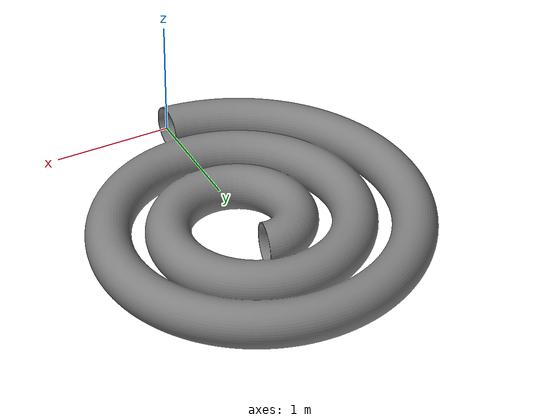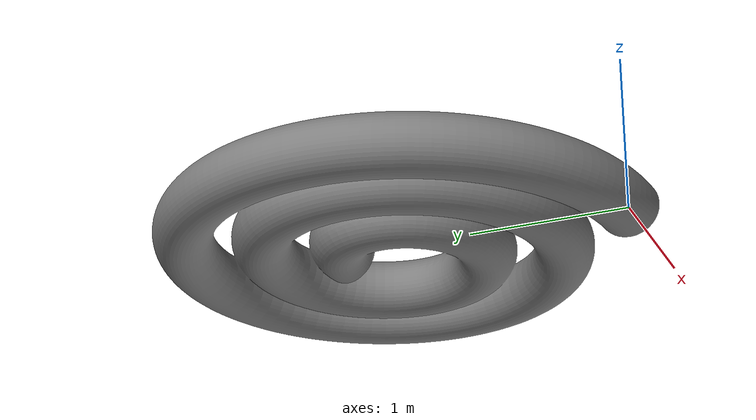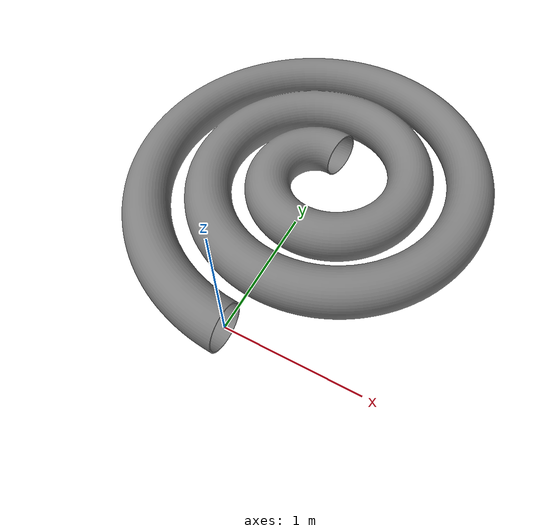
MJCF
<mujoco model="spiral_vert">
  <default>
    <default class="visual">
      <geom group="2" type="mesh" contype="0" conaffinity="0"/>
    </default>
    <default class="collision">
      <geom group="3" type="mesh"/>
    </default>
  </default>
  <asset>
    <mesh file="spiral_vert.obj"/>
    <mesh file="spiral_vert_collision_0.obj"/>
    <mesh file="spiral_vert_collision_1.obj"/>
    <mesh file="spiral_vert_collision_2.obj"/>
    <mesh file="spiral_vert_collision_3.obj"/>
    <mesh file="spiral_vert_collision_4.obj"/>
    <mesh file="spiral_vert_collision_5.obj"/>
    <mesh file="spiral_vert_collision_6.obj"/>
    <mesh file="spiral_vert_collision_7.obj"/>
    <mesh file="spiral_vert_collision_8.obj"/>
    <mesh file="spiral_vert_collision_9.obj"/>
    <mesh file="spiral_vert_collision_10.obj"/>
    <mesh file="spiral_vert_collision_11.obj"/>
    <mesh file="spiral_vert_collision_12.obj"/>
    <mesh file="spiral_vert_collision_13.obj"/>
    <mesh file="spiral_vert_collision_14.obj"/>
    <mesh file="spiral_vert_collision_15.obj"/>
    <mesh file="spiral_vert_collision_16.obj"/>
    <mesh file="spiral_vert_collision_17.obj"/>
    <mesh file="spiral_vert_collision_18.obj"/>
    <mesh file="spiral_vert_collision_19.obj"/>
    <mesh file="spiral_vert_collision_20.obj"/>
    <mesh file="spiral_vert_collision_21.obj"/>
    <mesh file="spiral_vert_collision_22.obj"/>
    <mesh file="spiral_vert_collision_23.obj"/>
    <mesh file="spiral_vert_collision_24.obj"/>
    <mesh file="spiral_vert_collision_25.obj"/>
    <mesh file="spiral_vert_collision_26.obj"/>
    <mesh file="spiral_vert_collision_27.obj"/>
    <mesh file="spiral_vert_collision_28.obj"/>
    <mesh file="spiral_vert_collision_29.obj"/>
    <mesh file="spiral_vert_collision_30.obj"/>
    <mesh file="spiral_vert_collision_31.obj"/>
    <mesh file="spiral_vert_collision_32.obj"/>
    <mesh file="spiral_vert_collision_33.obj"/>
    <mesh file="spiral_vert_collision_34.obj"/>
    <mesh file="spiral_vert_collision_35.obj"/>
    <mesh file="spiral_vert_collision_36.obj"/>
    <mesh file="spiral_vert_collision_37.obj"/>
    <mesh file="spiral_vert_collision_38.obj"/>
    <mesh file="spiral_vert_collision_39.obj"/>
    <mesh file="spiral_vert_collision_40.obj"/>
    <mesh file="spiral_vert_collision_41.obj"/>
    <mesh file="spiral_vert_collision_42.obj"/>
    <mesh file="spiral_vert_collision_43.obj"/>
    <mesh file="spiral_vert_collision_44.obj"/>
    <mesh file="spiral_vert_collision_45.obj"/>
    <mesh file="spiral_vert_collision_46.obj"/>
    <mesh file="spiral_vert_collision_47.obj"/>
    <mesh file="spiral_vert_collision_48.obj"/>
    <mesh file="spiral_vert_collision_49.obj"/>
    <mesh file="spiral_vert_collision_50.obj"/>
    <mesh file="spiral_vert_collision_51.obj"/>
    <mesh file="spiral_vert_collision_52.obj"/>
    <mesh file="spiral_vert_collision_53.obj"/>
    <mesh file="spiral_vert_collision_54.obj"/>
    <mesh file="spiral_vert_collision_55.obj"/>
    <mesh file="spiral_vert_collision_56.obj"/>
    <mesh file="spiral_vert_collision_57.obj"/>
    <mesh file="spiral_vert_collision_58.obj"/>
    <mesh file="spiral_vert_collision_59.obj"/>
    <mesh file="spiral_vert_collision_60.obj"/>
    <mesh file="spiral_vert_collision_61.obj"/>
    <mesh file="spiral_vert_collision_62.obj"/>
    <mesh file="spiral_vert_collision_63.obj"/>
    <mesh file="spiral_vert_collision_64.obj"/>
    <mesh file="spiral_vert_collision_65.obj"/>
    <mesh file="spiral_vert_collision_66.obj"/>
    <mesh file="spiral_vert_collision_67.obj"/>
    <mesh file="spiral_vert_collision_68.obj"/>
    <mesh file="spiral_vert_collision_69.obj"/>
    <mesh file="spiral_vert_collision_70.obj"/>
    <mesh file="spiral_vert_collision_71.obj"/>
    <mesh file="spiral_vert_collision_72.obj"/>
    <mesh file="spiral_vert_collision_73.obj"/>
    <mesh file="spiral_vert_collision_74.obj"/>
    <mesh file="spiral_vert_collision_75.obj"/>
    <mesh file="spiral_vert_collision_76.obj"/>
    <mesh file="spiral_vert_collision_77.obj"/>
    <mesh file="spiral_vert_collision_78.obj"/>
    <mesh file="spiral_vert_collision_79.obj"/>
    <mesh file="spiral_vert_collision_80.obj"/>
    <mesh file="spiral_vert_collision_81.obj"/>
    <mesh file="spiral_vert_collision_82.obj"/>
    <mesh file="spiral_vert_collision_83.obj"/>
    <mesh file="spiral_vert_collision_84.obj"/>
    <mesh file="spiral_vert_collision_85.obj"/>
    <mesh file="spiral_vert_collision_86.obj"/>
    <mesh file="spiral_vert_collision_87.obj"/>
    <mesh file="spiral_vert_collision_88.obj"/>
    <mesh file="spiral_vert_collision_89.obj"/>
    <mesh file="spiral_vert_collision_90.obj"/>
    <mesh file="spiral_vert_collision_91.obj"/>
    <mesh file="spiral_vert_collision_92.obj"/>
    <mesh file="spiral_vert_collision_93.obj"/>
    <mesh file="spiral_vert_collision_94.obj"/>
    <mesh file="spiral_vert_collision_95.obj"/>
    <mesh file="spiral_vert_collision_96.obj"/>
    <mesh file="spiral_vert_collision_97.obj"/>
    <mesh file="spiral_vert_collision_98.obj"/>
    <mesh file="spiral_vert_collision_99.obj"/>
    <mesh file="spiral_vert_collision_100.obj"/>
    <mesh file="spiral_vert_collision_101.obj"/>
    <mesh file="spiral_vert_collision_102.obj"/>
    <mesh file="spiral_vert_collision_103.obj"/>
    <mesh file="spiral_vert_collision_104.obj"/>
    <mesh file="spiral_vert_collision_105.obj"/>
    <mesh file="spiral_vert_collision_106.obj"/>
    <mesh file="spiral_vert_collision_107.obj"/>
    <mesh file="spiral_vert_collision_108.obj"/>
    <mesh file="spiral_vert_collision_109.obj"/>
    <mesh file="spiral_vert_collision_110.obj"/>
    <mesh file="spiral_vert_collision_111.obj"/>
    <mesh file="spiral_vert_collision_112.obj"/>
    <mesh file="spiral_vert_collision_113.obj"/>
    <mesh file="spiral_vert_collision_114.obj"/>
    <mesh file="spiral_vert_collision_115.obj"/>
    <mesh file="spiral_vert_collision_116.obj"/>
    <mesh file="spiral_vert_collision_117.obj"/>
    <mesh file="spiral_vert_collision_118.obj"/>
    <mesh file="spiral_vert_collision_119.obj"/>
    <mesh file="spiral_vert_collision_120.obj"/>
    <mesh file="spiral_vert_collision_121.obj"/>
    <mesh file="spiral_vert_collision_122.obj"/>
    <mesh file="spiral_vert_collision_123.obj"/>
    <mesh file="spiral_vert_collision_124.obj"/>
    <mesh file="spiral_vert_collision_125.obj"/>
    <mesh file="spiral_vert_collision_126.obj"/>
    <mesh file="spiral_vert_collision_127.obj"/>
    <mesh file="spiral_vert_collision_128.obj"/>
    <mesh file="spiral_vert_collision_129.obj"/>
    <mesh file="spiral_vert_collision_130.obj"/>
    <mesh file="spiral_vert_collision_131.obj"/>
    <mesh file="spiral_vert_collision_132.obj"/>
    <mesh file="spiral_vert_collision_133.obj"/>
    <mesh file="spiral_vert_collision_134.obj"/>
    <mesh file="spiral_vert_collision_135.obj"/>
    <mesh file="spiral_vert_collision_136.obj"/>
    <mesh file="spiral_vert_collision_137.obj"/>
    <mesh file="spiral_vert_collision_138.obj"/>
    <mesh file="spiral_vert_collision_139.obj"/>
    <mesh file="spiral_vert_collision_140.obj"/>
    <mesh file="spiral_vert_collision_141.obj"/>
    <mesh file="spiral_vert_collision_142.obj"/>
    <mesh file="spiral_vert_collision_143.obj"/>
    <mesh file="spiral_vert_collision_144.obj"/>
    <mesh file="spiral_vert_collision_145.obj"/>
    <mesh file="spiral_vert_collision_146.obj"/>
    <mesh file="spiral_vert_collision_147.obj"/>
    <mesh file="spiral_vert_collision_148.obj"/>
    <mesh file="spiral_vert_collision_149.obj"/>
    <mesh file="spiral_vert_collision_150.obj"/>
    <mesh file="spiral_vert_collision_151.obj"/>
    <mesh file="spiral_vert_collision_152.obj"/>
    <mesh file="spiral_vert_collision_153.obj"/>
    <mesh file="spiral_vert_collision_154.obj"/>
    <mesh file="spiral_vert_collision_155.obj"/>
    <mesh file="spiral_vert_collision_156.obj"/>
    <mesh file="spiral_vert_collision_157.obj"/>
    <mesh file="spiral_vert_collision_158.obj"/>
    <mesh file="spiral_vert_collision_159.obj"/>
    <mesh file="spiral_vert_collision_160.obj"/>
    <mesh file="spiral_vert_collision_161.obj"/>
    <mesh file="spiral_vert_collision_162.obj"/>
    <mesh file="spiral_vert_collision_163.obj"/>
    <mesh file="spiral_vert_collision_164.obj"/>
    <mesh file="spiral_vert_collision_165.obj"/>
    <mesh file="spiral_vert_collision_166.obj"/>
    <mesh file="spiral_vert_collision_167.obj"/>
    <mesh file="spiral_vert_collision_168.obj"/>
    <mesh file="spiral_vert_collision_169.obj"/>
    <mesh file="spiral_vert_collision_170.obj"/>
    <mesh file="spiral_vert_collision_171.obj"/>
    <mesh file="spiral_vert_collision_172.obj"/>
    <mesh file="spiral_vert_collision_173.obj"/>
    <mesh file="spiral_vert_collision_174.obj"/>
    <mesh file="spiral_vert_collision_175.obj"/>
    <mesh file="spiral_vert_collision_176.obj"/>
    <mesh file="spiral_vert_collision_177.obj"/>
    <mesh file="spiral_vert_collision_178.obj"/>
    <mesh file="spiral_vert_collision_179.obj"/>
    <mesh file="spiral_vert_collision_180.obj"/>
    <mesh file="spiral_vert_collision_181.obj"/>
    <mesh file="spiral_vert_collision_182.obj"/>
    <mesh file="spiral_vert_collision_183.obj"/>
    <mesh file="spiral_vert_collision_184.obj"/>
    <mesh file="spiral_vert_collision_185.obj"/>
    <mesh file="spiral_vert_collision_186.obj"/>
    <mesh file="spiral_vert_collision_187.obj"/>
    <mesh file="spiral_vert_collision_188.obj"/>
    <mesh file="spiral_vert_collision_189.obj"/>
    <mesh file="spiral_vert_collision_190.obj"/>
    <mesh file="spiral_vert_collision_191.obj"/>
    <mesh file="spiral_vert_collision_192.obj"/>
    <mesh file="spiral_vert_collision_193.obj"/>
    <mesh file="spiral_vert_collision_194.obj"/>
    <mesh file="spiral_vert_collision_195.obj"/>
    <mesh file="spiral_vert_collision_196.obj"/>
    <mesh file="spiral_vert_collision_197.obj"/>
    <mesh file="spiral_vert_collision_198.obj"/>
    <mesh file="spiral_vert_collision_199.obj"/>
    <mesh file="spiral_vert_collision_200.obj"/>
    <mesh file="spiral_vert_collision_201.obj"/>
    <mesh file="spiral_vert_collision_202.obj"/>
    <mesh file="spiral_vert_collision_203.obj"/>
    <mesh file="spiral_vert_collision_204.obj"/>
    <mesh file="spiral_vert_collision_205.obj"/>
    <mesh file="spiral_vert_collision_206.obj"/>
    <mesh file="spiral_vert_collision_207.obj"/>
    <mesh file="spiral_vert_collision_208.obj"/>
    <mesh file="spiral_vert_collision_209.obj"/>
    <mesh file="spiral_vert_collision_210.obj"/>
    <mesh file="spiral_vert_collision_211.obj"/>
    <mesh file="spiral_vert_collision_212.obj"/>
    <mesh file="spiral_vert_collision_213.obj"/>
    <mesh file="spiral_vert_collision_214.obj"/>
    <mesh file="spiral_vert_collision_215.obj"/>
    <mesh file="spiral_vert_collision_216.obj"/>
    <mesh file="spiral_vert_collision_217.obj"/>
    <mesh file="spiral_vert_collision_218.obj"/>
    <mesh file="spiral_vert_collision_219.obj"/>
    <mesh file="spiral_vert_collision_220.obj"/>
    <mesh file="spiral_vert_collision_221.obj"/>
    <mesh file="spiral_vert_collision_222.obj"/>
    <mesh file="spiral_vert_collision_223.obj"/>
    <mesh file="spiral_vert_collision_224.obj"/>
    <mesh file="spiral_vert_collision_225.obj"/>
    <mesh file="spiral_vert_collision_226.obj"/>
    <mesh file="spiral_vert_collision_227.obj"/>
    <mesh file="spiral_vert_collision_228.obj"/>
    <mesh file="spiral_vert_collision_229.obj"/>
    <mesh file="spiral_vert_collision_230.obj"/>
    <mesh file="spiral_vert_collision_231.obj"/>
    <mesh file="spiral_vert_collision_232.obj"/>
    <mesh file="spiral_vert_collision_233.obj"/>
    <mesh file="spiral_vert_collision_234.obj"/>
    <mesh file="spiral_vert_collision_235.obj"/>
    <mesh file="spiral_vert_collision_236.obj"/>
    <mesh file="spiral_vert_collision_237.obj"/>
    <mesh file="spiral_vert_collision_238.obj"/>
    <mesh file="spiral_vert_collision_239.obj"/>
    <mesh file="spiral_vert_collision_240.obj"/>
    <mesh file="spiral_vert_collision_241.obj"/>
    <mesh file="spiral_vert_collision_242.obj"/>
    <mesh file="spiral_vert_collision_243.obj"/>
    <mesh file="spiral_vert_collision_244.obj"/>
    <mesh file="spiral_vert_collision_245.obj"/>
    <mesh file="spiral_vert_collision_246.obj"/>
    <mesh file="spiral_vert_collision_247.obj"/>
    <mesh file="spiral_vert_collision_248.obj"/>
    <mesh file="spiral_vert_collision_249.obj"/>
    <mesh file="spiral_vert_collision_250.obj"/>
    <mesh file="spiral_vert_collision_251.obj"/>
    <mesh file="spiral_vert_collision_252.obj"/>
    <mesh file="spiral_vert_collision_253.obj"/>
    <mesh file="spiral_vert_collision_254.obj"/>
    <mesh file="spiral_vert_collision_255.obj"/>
    <mesh file="spiral_vert_collision_256.obj"/>
    <mesh file="spiral_vert_collision_257.obj"/>
    <mesh file="spiral_vert_collision_258.obj"/>
    <mesh file="spiral_vert_collision_259.obj"/>
    <mesh file="spiral_vert_collision_260.obj"/>
    <mesh file="spiral_vert_collision_261.obj"/>
    <mesh file="spiral_vert_collision_262.obj"/>
    <mesh file="spiral_vert_collision_263.obj"/>
    <mesh file="spiral_vert_collision_264.obj"/>
    <mesh file="spiral_vert_collision_265.obj"/>
    <mesh file="spiral_vert_collision_266.obj"/>
    <mesh file="spiral_vert_collision_267.obj"/>
    <mesh file="spiral_vert_collision_268.obj"/>
    <mesh file="spiral_vert_collision_269.obj"/>
    <mesh file="spiral_vert_collision_270.obj"/>
    <mesh file="spiral_vert_collision_271.obj"/>
    <mesh file="spiral_vert_collision_272.obj"/>
    <mesh file="spiral_vert_collision_273.obj"/>
    <mesh file="spiral_vert_collision_274.obj"/>
    <mesh file="spiral_vert_collision_275.obj"/>
    <mesh file="spiral_vert_collision_276.obj"/>
    <mesh file="spiral_vert_collision_277.obj"/>
    <mesh file="spiral_vert_collision_278.obj"/>
    <mesh file="spiral_vert_collision_279.obj"/>
    <mesh file="spiral_vert_collision_280.obj"/>
    <mesh file="spiral_vert_collision_281.obj"/>
    <mesh file="spiral_vert_collision_282.obj"/>
    <mesh file="spiral_vert_collision_283.obj"/>
    <mesh file="spiral_vert_collision_284.obj"/>
    <mesh file="spiral_vert_collision_285.obj"/>
    <mesh file="spiral_vert_collision_286.obj"/>
    <mesh file="spiral_vert_collision_287.obj"/>
    <mesh file="spiral_vert_collision_288.obj"/>
    <mesh file="spiral_vert_collision_289.obj"/>
    <mesh file="spiral_vert_collision_290.obj"/>
    <mesh file="spiral_vert_collision_291.obj"/>
    <mesh file="spiral_vert_collision_292.obj"/>
    <mesh file="spiral_vert_collision_293.obj"/>
    <mesh file="spiral_vert_collision_294.obj"/>
    <mesh file="spiral_vert_collision_295.obj"/>
    <mesh file="spiral_vert_collision_296.obj"/>
    <mesh file="spiral_vert_collision_297.obj"/>
    <mesh file="spiral_vert_collision_298.obj"/>
    <mesh file="spiral_vert_collision_299.obj"/>
    <mesh file="spiral_vert_collision_300.obj"/>
    <mesh file="spiral_vert_collision_301.obj"/>
    <mesh file="spiral_vert_collision_302.obj"/>
    <mesh file="spiral_vert_collision_303.obj"/>
    <mesh file="spiral_vert_collision_304.obj"/>
    <mesh file="spiral_vert_collision_305.obj"/>
    <mesh file="spiral_vert_collision_306.obj"/>
    <mesh file="spiral_vert_collision_307.obj"/>
    <mesh file="spiral_vert_collision_308.obj"/>
    <mesh file="spiral_vert_collision_309.obj"/>
    <mesh file="spiral_vert_collision_310.obj"/>
    <mesh file="spiral_vert_collision_311.obj"/>
    <mesh file="spiral_vert_collision_312.obj"/>
    <mesh file="spiral_vert_collision_313.obj"/>
    <mesh file="spiral_vert_collision_314.obj"/>
    <mesh file="spiral_vert_collision_315.obj"/>
    <mesh file="spiral_vert_collision_316.obj"/>
    <mesh file="spiral_vert_collision_317.obj"/>
    <mesh file="spiral_vert_collision_318.obj"/>
    <mesh file="spiral_vert_collision_319.obj"/>
    <mesh file="spiral_vert_collision_320.obj"/>
    <mesh file="spiral_vert_collision_321.obj"/>
    <mesh file="spiral_vert_collision_322.obj"/>
    <mesh file="spiral_vert_collision_323.obj"/>
    <mesh file="spiral_vert_collision_324.obj"/>
    <mesh file="spiral_vert_collision_325.obj"/>
    <mesh file="spiral_vert_collision_326.obj"/>
    <mesh file="spiral_vert_collision_327.obj"/>
    <mesh file="spiral_vert_collision_328.obj"/>
    <mesh file="spiral_vert_collision_329.obj"/>
    <mesh file="spiral_vert_collision_330.obj"/>
    <mesh file="spiral_vert_collision_331.obj"/>
    <mesh file="spiral_vert_collision_332.obj"/>
    <mesh file="spiral_vert_collision_333.obj"/>
    <mesh file="spiral_vert_collision_334.obj"/>
    <mesh file="spiral_vert_collision_335.obj"/>
    <mesh file="spiral_vert_collision_336.obj"/>
    <mesh file="spiral_vert_collision_337.obj"/>
    <mesh file="spiral_vert_collision_338.obj"/>
    <mesh file="spiral_vert_collision_339.obj"/>
  </asset>
  <worldbody>
    <body name="spiral_vert">
      <geom mesh="spiral_vert" class="visual"/>
      <geom mesh="spiral_vert_collision_0" rgba="0.9588255963066795 0.001994478355619944 0.04247229769127803 1" class="collision"/>
      <geom mesh="spiral_vert_collision_1" rgba="0.07979495958342753 0.4140516031495709 0.7052846241166332 1" class="collision"/>
      <geom mesh="spiral_vert_collision_2" rgba="0.08890490846986188 0.3470132013315965 0.31135297774714654 1" class="collision"/>
      <geom mesh="spiral_vert_collision_3" rgba="0.25489372754398687 0.7326088322485268 0.33877135682852366 1" class="collision"/>
      <geom mesh="spiral_vert_collision_4" rgba="0.03185628098258442 0.339822805084523 0.1620935485013113 1" class="collision"/>
      <geom mesh="spiral_vert_collision_5" rgba="0.8155241973210524 0.2267684547820904 0.7614368808594973 1" class="collision"/>
      <geom mesh="spiral_vert_collision_6" rgba="0.6985409518746566 0.9574890836788919 0.07513888648203948 1" class="collision"/>
      <geom mesh="spiral_vert_collision_7" rgba="0.03325926810738411 0.9645589130650707 0.8751974799916002 1" class="collision"/>
      <geom mesh="spiral_vert_collision_8" rgba="0.4817051887325903 0.17743624700794547 0.577646563793075 1" class="collision"/>
      <geom mesh="spiral_vert_collision_9" rgba="0.811179153453729 0.14987358164739417 0.906714960254814 1" class="collision"/>
      <geom mesh="spiral_vert_collision_10" rgba="0.79818292163533 0.28308564361966293 0.15367131807543766 1" class="collision"/>
      <geom mesh="spiral_vert_collision_11" rgba="0.20087713116472272 0.7468484587927782 0.5279575526874097 1" class="collision"/>
      <geom mesh="spiral_vert_collision_12" rgba="0.16084565072379065 0.8529332251271616 0.2914327495574289 1" class="collision"/>
      <geom mesh="spiral_vert_collision_13" rgba="0.3264713902915597 0.55845567257885 0.19149437009265324 1" class="collision"/>
      <geom mesh="spiral_vert_collision_14" rgba="0.9303808270765632 0.4814264868879695 0.45353740972164136 1" class="collision"/>
      <geom mesh="spiral_vert_collision_15" rgba="0.7730377990220563 0.4795708357395292 0.5488147070692889 1" class="collision"/>
      <geom mesh="spiral_vert_collision_16" rgba="0.8536276896420517 0.9901754315934794 0.5568039896387413 1" class="collision"/>
      <geom mesh="spiral_vert_collision_17" rgba="0.23700518480742816 0.3688178273444367 0.5109995700892762 1" class="collision"/>
      <geom mesh="spiral_vert_collision_18" rgba="0.34649018986991154 0.3348237189294111 0.018555606705618732 1" class="collision"/>
      <geom mesh="spiral_vert_collision_19" rgba="0.1723344904806744 0.8031781445470242 0.9312646210914408 1" class="collision"/>
      <geom mesh="spiral_vert_collision_20" rgba="0.566550175599958 0.3347863900888953 0.6635122084328675 1" class="collision"/>
      <geom mesh="spiral_vert_collision_21" rgba="0.468980201793623 0.4157350671729023 0.5023549797639872 1" class="collision"/>
      <geom mesh="spiral_vert_collision_22" rgba="0.9516285369502343 0.876975306573652 0.7309911069493286 1" class="collision"/>
      <geom mesh="spiral_vert_collision_23" rgba="0.5740367736890796 0.27542625035966906 0.02162907144000692 1" class="collision"/>
      <geom mesh="spiral_vert_collision_24" rgba="0.7525002246511551 0.3371719611580045 0.8298792411745944 1" class="collision"/>
      <geom mesh="spiral_vert_collision_25" rgba="0.8510153878253135 0.9870689358381884 0.9306582351696051 1" class="collision"/>
      <geom mesh="spiral_vert_collision_26" rgba="0.412155830974554 0.5361647813082477 0.367596939137795 1" class="collision"/>
      <geom mesh="spiral_vert_collision_27" rgba="0.9821694516507182 0.4537752868450571 0.6283164445013126 1" class="collision"/>
      <geom mesh="spiral_vert_collision_28" rgba="0.22619130193044878 0.48023232223071066 0.9587388507227623 1" class="collision"/>
      <geom mesh="spiral_vert_collision_29" rgba="0.5008066372304264 0.7070434197264701 0.3566695507446944 1" class="collision"/>
      <geom mesh="spiral_vert_collision_30" rgba="0.8260802755659861 0.33085087473405717 0.42896679806878046 1" class="collision"/>
      <geom mesh="spiral_vert_collision_31" rgba="0.8526965120074498 0.22514720197862137 0.1408311624800047 1" class="collision"/>
      <geom mesh="spiral_vert_collision_32" rgba="0.9116858879320301 0.37926641199514055 0.287625849020578 1" class="collision"/>
      <geom mesh="spiral_vert_collision_33" rgba="0.18323787276850623 0.8145291595154157 0.06582676135421095 1" class="collision"/>
      <geom mesh="spiral_vert_collision_34" rgba="0.6133122763466516 0.5039626069654737 0.739493905300201 1" class="collision"/>
      <geom mesh="spiral_vert_collision_35" rgba="0.5800034082605268 0.4366640251563396 0.2175350437902407 1" class="collision"/>
      <geom mesh="spiral_vert_collision_36" rgba="0.31177001034378093 0.9055341449609708 0.9856400785435105 1" class="collision"/>
      <geom mesh="spiral_vert_collision_37" rgba="0.27005509094186575 0.7129875808164843 0.10781839380787761 1" class="collision"/>
      <geom mesh="spiral_vert_collision_38" rgba="0.060300084759433714 0.8277868877231194 0.8562453138744286 1" class="collision"/>
      <geom mesh="spiral_vert_collision_39" rgba="0.276573805498773 0.48659733133990557 0.9829165849133105 1" class="collision"/>
      <geom mesh="spiral_vert_collision_40" rgba="0.07993764955983351 0.6470742866350317 0.6774137510294977 1" class="collision"/>
      <geom mesh="spiral_vert_collision_41" rgba="0.69062843707178 0.6406235501737978 0.20221758498164322 1" class="collision"/>
      <geom mesh="spiral_vert_collision_42" rgba="0.9866007653021557 0.6665654039265325 0.017531371518391126 1" class="collision"/>
      <geom mesh="spiral_vert_collision_43" rgba="0.14895628218065649 0.8977313305725598 0.7607585499138702 1" class="collision"/>
      <geom mesh="spiral_vert_collision_44" rgba="0.41393092600448456 0.3291848437291224 0.9271162482042493 1" class="collision"/>
      <geom mesh="spiral_vert_collision_45" rgba="0.702482539038892 0.6743490744068769 0.726609771889796 1" class="collision"/>
      <geom mesh="spiral_vert_collision_46" rgba="0.742820309998739 0.4106751351808876 0.28094717913685086 1" class="collision"/>
      <geom mesh="spiral_vert_collision_47" rgba="0.5140090665118044 0.2613002980750172 0.36625155066802983 1" class="collision"/>
      <geom mesh="spiral_vert_collision_48" rgba="0.09261845173518135 0.6966174422700266 0.08203742124514601 1" class="collision"/>
      <geom mesh="spiral_vert_collision_49" rgba="0.39540338943635067 0.17971023397527164 0.9787073660392626 1" class="collision"/>
      <geom mesh="spiral_vert_collision_50" rgba="0.2905422320888641 0.9883506131261092 0.7121426715664084 1" class="collision"/>
      <geom mesh="spiral_vert_collision_51" rgba="0.5144071582010973 0.5879939165879245 0.5878051631657653 1" class="collision"/>
      <geom mesh="spiral_vert_collision_52" rgba="0.6163953955431746 0.6831018484898439 0.39373247958279367 1" class="collision"/>
      <geom mesh="spiral_vert_collision_53" rgba="0.29920319833414555 0.604561201726412 0.09860830127010445 1" class="collision"/>
      <geom mesh="spiral_vert_collision_54" rgba="0.2303482035944574 0.7501905102929738 0.8830276750389252 1" class="collision"/>
      <geom mesh="spiral_vert_collision_55" rgba="0.693136820142498 0.0764731779382597 0.3907179195847392 1" class="collision"/>
      <geom mesh="spiral_vert_collision_56" rgba="0.8538499386672462 0.8816363229430249 0.41740274092610363 1" class="collision"/>
      <geom mesh="spiral_vert_collision_57" rgba="0.40955145849813934 0.3899369122598221 0.16895327314722375 1" class="collision"/>
      <geom mesh="spiral_vert_collision_58" rgba="0.823239144963074 0.2574443461884335 0.4278257175097896 1" class="collision"/>
      <geom mesh="spiral_vert_collision_59" rgba="0.29001708236764745 0.3658130388308779 0.25571463533256655 1" class="collision"/>
      <geom mesh="spiral_vert_collision_60" rgba="0.22497868555638945 0.05452857925349497 0.8573525352196878 1" class="collision"/>
      <geom mesh="spiral_vert_collision_61" rgba="0.6802056581508262 0.6466592500975191 0.6041565149580245 1" class="collision"/>
      <geom mesh="spiral_vert_collision_62" rgba="0.03539129830240728 0.36580256992332383 0.4378877829682505 1" class="collision"/>
      <geom mesh="spiral_vert_collision_63" rgba="0.7763448971191949 0.6047036174078797 0.887892790347798 1" class="collision"/>
      <geom mesh="spiral_vert_collision_64" rgba="0.6510008020118426 0.782117318163752 0.3990332520105677 1" class="collision"/>
      <geom mesh="spiral_vert_collision_65" rgba="0.29425562316416776 0.1002299625302071 0.3100657722117818 1" class="collision"/>
      <geom mesh="spiral_vert_collision_66" rgba="0.5891475916698284 0.8603336115634127 0.69898631769491 1" class="collision"/>
      <geom mesh="spiral_vert_collision_67" rgba="0.08505445170653425 0.7832629918568402 0.704063208000642 1" class="collision"/>
      <geom mesh="spiral_vert_collision_68" rgba="0.5408774747599979 0.33117126118465556 0.6123329346748012 1" class="collision"/>
      <geom mesh="spiral_vert_collision_69" rgba="0.4749117084049812 0.6652435095035834 0.9609890791877935 1" class="collision"/>
      <geom mesh="spiral_vert_collision_70" rgba="0.7203918738443325 0.07376020818497442 0.765756938849566 1" class="collision"/>
      <geom mesh="spiral_vert_collision_71" rgba="0.5234538315482123 0.8333064875963047 0.7120949881627814 1" class="collision"/>
      <geom mesh="spiral_vert_collision_72" rgba="0.7116745005844652 0.8960419925636098 0.40779337715627395 1" class="collision"/>
      <geom mesh="spiral_vert_collision_73" rgba="0.29360868298052956 0.10212993208858556 0.14901801374369184 1" class="collision"/>
      <geom mesh="spiral_vert_collision_74" rgba="0.48774872952620885 0.8072579251798173 0.3520655591449394 1" class="collision"/>
      <geom mesh="spiral_vert_collision_75" rgba="0.9347738747476692 0.7177091970538368 0.8682654333194272 1" class="collision"/>
      <geom mesh="spiral_vert_collision_76" rgba="0.9198404242833169 0.8996839435408301 0.3942686869879444 1" class="collision"/>
      <geom mesh="spiral_vert_collision_77" rgba="0.7905434299413829 0.3690271177066001 0.007824820375669228 1" class="collision"/>
      <geom mesh="spiral_vert_collision_78" rgba="0.3363028588022302 0.4598338684283496 0.6871986713519526 1" class="collision"/>
      <geom mesh="spiral_vert_collision_79" rgba="0.28767778717641657 0.8372682384308644 0.8976791737171578 1" class="collision"/>
      <geom mesh="spiral_vert_collision_80" rgba="0.18081810404159082 0.7848151217359859 0.3978864562714751 1" class="collision"/>
      <geom mesh="spiral_vert_collision_81" rgba="0.6695264237323892 0.050994271888915144 0.41402615007820665 1" class="collision"/>
      <geom mesh="spiral_vert_collision_82" rgba="0.6304832542913548 0.3709183876002502 0.07579226566663388 1" class="collision"/>
      <geom mesh="spiral_vert_collision_83" rgba="0.2896990869313738 0.7669204046748336 0.9013229869142717 1" class="collision"/>
      <geom mesh="spiral_vert_collision_84" rgba="0.6870326790624852 0.8219441356642091 0.18111430480970647 1" class="collision"/>
      <geom mesh="spiral_vert_collision_85" rgba="0.8288365233966698 0.7216346375401164 0.14180701294428333 1" class="collision"/>
      <geom mesh="spiral_vert_collision_86" rgba="0.24851119627680418 0.7222895729833699 0.6232285854198302 1" class="collision"/>
      <geom mesh="spiral_vert_collision_87" rgba="0.19603983580530737 0.9778430665159573 0.64010776639419 1" class="collision"/>
      <geom mesh="spiral_vert_collision_88" rgba="0.6143973347753391 0.9119353820236249 0.974759667487581 1" class="collision"/>
      <geom mesh="spiral_vert_collision_89" rgba="0.6541865502842552 0.31352898508050997 0.9141202315488974 1" class="collision"/>
      <geom mesh="spiral_vert_collision_90" rgba="0.1296652887732238 0.48186668152775103 0.39375469644657524 1" class="collision"/>
      <geom mesh="spiral_vert_collision_91" rgba="0.432983429152519 0.05419084991129097 0.011296846419929119 1" class="collision"/>
      <geom mesh="spiral_vert_collision_92" rgba="0.28589975534837353 0.26090102351472233 0.16202131634760286 1" class="collision"/>
      <geom mesh="spiral_vert_collision_93" rgba="0.8031128572865306 0.8919565929713866 0.3431357671523665 1" class="collision"/>
      <geom mesh="spiral_vert_collision_94" rgba="0.9712234816561035 0.698935951017934 0.964882149524237 1" class="collision"/>
      <geom mesh="spiral_vert_collision_95" rgba="0.4902545694630317 0.3711577506319196 0.36070470707029745 1" class="collision"/>
      <geom mesh="spiral_vert_collision_96" rgba="0.02134296824750359 0.4773742425252784 0.3897759214961317 1" class="collision"/>
      <geom mesh="spiral_vert_collision_97" rgba="0.4800465947362391 0.08419303177166171 0.4811096342649831 1" class="collision"/>
      <geom mesh="spiral_vert_collision_98" rgba="0.3458744073156117 0.9260772342195598 0.2797340246450071 1" class="collision"/>
      <geom mesh="spiral_vert_collision_99" rgba="0.8194208462993128 0.33133416149575023 0.3301427614299576 1" class="collision"/>
      <geom mesh="spiral_vert_collision_100" rgba="0.12162154459737395 0.4439438527116214 0.8127153296036042 1" class="collision"/>
      <geom mesh="spiral_vert_collision_101" rgba="0.9655711867408048 0.9242472626318751 0.8163885441774142 1" class="collision"/>
      <geom mesh="spiral_vert_collision_102" rgba="0.033932356031752264 0.4579570286343706 0.307571455211484 1" class="collision"/>
      <geom mesh="spiral_vert_collision_103" rgba="0.25330377173751895 0.13707757939705534 0.7924511834164637 1" class="collision"/>
      <geom mesh="spiral_vert_collision_104" rgba="0.4244743218146221 0.6511433159275269 0.13807525947692445 1" class="collision"/>
      <geom mesh="spiral_vert_collision_105" rgba="0.46967159721542096 0.6976089554477558 0.7793594401822849 1" class="collision"/>
      <geom mesh="spiral_vert_collision_106" rgba="0.9453057379092707 0.8938592715144196 0.861867301763607 1" class="collision"/>
      <geom mesh="spiral_vert_collision_107" rgba="0.06763556689869654 0.5012149580004263 0.04209344820057992 1" class="collision"/>
      <geom mesh="spiral_vert_collision_108" rgba="0.335203641840195 0.9066692954746902 0.16780868389734027 1" class="collision"/>
      <geom mesh="spiral_vert_collision_109" rgba="0.6620191583915203 0.5664869490547413 0.5309168273547922 1" class="collision"/>
      <geom mesh="spiral_vert_collision_110" rgba="0.976217639805869 0.6385496129396886 0.8799014351668992 1" class="collision"/>
      <geom mesh="spiral_vert_collision_111" rgba="0.124266579970302 0.3275109913386166 0.21058521075486447 1" class="collision"/>
      <geom mesh="spiral_vert_collision_112" rgba="0.5951105841900195 0.818028265669817 0.2536152965359558 1" class="collision"/>
      <geom mesh="spiral_vert_collision_113" rgba="0.4005407343177243 0.3964672287098191 0.693202884246446 1" class="collision"/>
      <geom mesh="spiral_vert_collision_114" rgba="0.7133864134760314 0.27431398466548784 0.6281773340680027 1" class="collision"/>
      <geom mesh="spiral_vert_collision_115" rgba="0.7968194639160072 0.7483969608147376 0.961353432577347 1" class="collision"/>
      <geom mesh="spiral_vert_collision_116" rgba="0.6476521167857807 0.6385322625375144 0.6179041576728179 1" class="collision"/>
      <geom mesh="spiral_vert_collision_117" rgba="0.548914079085588 0.21821896107345662 0.7070093786823902 1" class="collision"/>
      <geom mesh="spiral_vert_collision_118" rgba="0.2925550938670308 0.839559144450348 0.27234137549154935 1" class="collision"/>
      <geom mesh="spiral_vert_collision_119" rgba="0.15504588420301024 0.8736801858300846 0.00817676814041457 1" class="collision"/>
      <geom mesh="spiral_vert_collision_120" rgba="0.2266289611515535 0.5675749573945187 0.003775929876650208 1" class="collision"/>
      <geom mesh="spiral_vert_collision_121" rgba="0.5823293658087358 0.5528166777151315 0.4887071598413336 1" class="collision"/>
      <geom mesh="spiral_vert_collision_122" rgba="0.9400392858097261 0.7789127842473346 0.2765308991008608 1" class="collision"/>
      <geom mesh="spiral_vert_collision_123" rgba="0.4592188157684677 0.7837418567718213 0.020944688701453607 1" class="collision"/>
      <geom mesh="spiral_vert_collision_124" rgba="0.03753243354383551 0.4354270749589023 0.48861208231234765 1" class="collision"/>
      <geom mesh="spiral_vert_collision_125" rgba="0.37470381584713597 0.33100035989637944 0.8172627193918482 1" class="collision"/>
      <geom mesh="spiral_vert_collision_126" rgba="0.479334285815989 0.02822946787963465 0.7275600601234542 1" class="collision"/>
      <geom mesh="spiral_vert_collision_127" rgba="0.45282816773722157 0.8679266603399383 0.6908613796805003 1" class="collision"/>
      <geom mesh="spiral_vert_collision_128" rgba="0.20961926650803087 0.5228897386862782 0.7186149191701378 1" class="collision"/>
      <geom mesh="spiral_vert_collision_129" rgba="0.03758370286386481 0.23775307618610897 0.28330676898500706 1" class="collision"/>
      <geom mesh="spiral_vert_collision_130" rgba="0.9341717502071945 0.8193214163007485 0.004256503405368428 1" class="collision"/>
      <geom mesh="spiral_vert_collision_131" rgba="0.002367312180080683 0.1360033759505318 0.11917999222101971 1" class="collision"/>
      <geom mesh="spiral_vert_collision_132" rgba="0.9626978791808029 0.5092348196690074 0.7605837564173632 1" class="collision"/>
      <geom mesh="spiral_vert_collision_133" rgba="0.562629814804958 0.5630433349921695 0.9037385998690451 1" class="collision"/>
      <geom mesh="spiral_vert_collision_134" rgba="0.8443838912027255 0.9688517512027761 0.9515834527199927 1" class="collision"/>
      <geom mesh="spiral_vert_collision_135" rgba="0.8608982865729974 0.810038811097411 0.33011200151411313 1" class="collision"/>
      <geom mesh="spiral_vert_collision_136" rgba="0.5994876212665051 0.6270630535592052 0.5643835233752486 1" class="collision"/>
      <geom mesh="spiral_vert_collision_137" rgba="0.9936302721574058 0.5196266469744625 0.6200066497868659 1" class="collision"/>
      <geom mesh="spiral_vert_collision_138" rgba="0.43438413137939624 0.49595622337812517 0.8059766121767279 1" class="collision"/>
      <geom mesh="spiral_vert_collision_139" rgba="0.8690960749139954 0.6437918590755313 0.9732148325360026 1" class="collision"/>
      <geom mesh="spiral_vert_collision_140" rgba="0.4556545920957149 0.3618035400858126 0.2356996670338063 1" class="collision"/>
      <geom mesh="spiral_vert_collision_141" rgba="0.889698061859589 0.2615555856493861 0.7313972495452855 1" class="collision"/>
      <geom mesh="spiral_vert_collision_142" rgba="0.3870039447290169 0.6551948550100695 0.20066041172256144 1" class="collision"/>
      <geom mesh="spiral_vert_collision_143" rgba="0.9826151483803404 0.9540268559068519 0.026612220171383094 1" class="collision"/>
      <geom mesh="spiral_vert_collision_144" rgba="0.006840780497713972 0.13899016575641487 0.7847064573867499 1" class="collision"/>
      <geom mesh="spiral_vert_collision_145" rgba="0.5796502213646763 0.9123372257806733 0.96452163297337 1" class="collision"/>
      <geom mesh="spiral_vert_collision_146" rgba="0.5375033103735146 0.08210385188759839 0.533430502563219 1" class="collision"/>
      <geom mesh="spiral_vert_collision_147" rgba="0.08051292833543588 0.23910576297525232 0.23514762790374732 1" class="collision"/>
      <geom mesh="spiral_vert_collision_148" rgba="0.35750278271265157 0.41428837714196387 0.2610989999072435 1" class="collision"/>
      <geom mesh="spiral_vert_collision_149" rgba="0.4548727023677184 0.5398728927539453 0.306630768051265 1" class="collision"/>
      <geom mesh="spiral_vert_collision_150" rgba="0.5079977270625218 0.9927842184568855 0.019830870884822827 1" class="collision"/>
      <geom mesh="spiral_vert_collision_151" rgba="0.2600575737448011 0.18757979587096574 0.44763859605203815 1" class="collision"/>
      <geom mesh="spiral_vert_collision_152" rgba="0.033352609639791586 0.9038817951627662 0.7738955979330705 1" class="collision"/>
      <geom mesh="spiral_vert_collision_153" rgba="0.5594494728988424 0.4071567091356153 0.11581791827589782 1" class="collision"/>
      <geom mesh="spiral_vert_collision_154" rgba="0.3556508108369504 0.052405343383897574 0.7595105781214707 1" class="collision"/>
      <geom mesh="spiral_vert_collision_155" rgba="0.1861548104186297 0.402867645356646 0.1806237872434019 1" class="collision"/>
      <geom mesh="spiral_vert_collision_156" rgba="0.5870454715790648 0.48344907223141986 0.05197617367152163 1" class="collision"/>
      <geom mesh="spiral_vert_collision_157" rgba="0.9991551927158335 0.5232937114549161 0.4858515851924482 1" class="collision"/>
      <geom mesh="spiral_vert_collision_158" rgba="0.7876715576211947 0.41613816340618903 0.2781423888061294 1" class="collision"/>
      <geom mesh="spiral_vert_collision_159" rgba="0.7849512402700702 0.8974919694338134 0.6755502277815564 1" class="collision"/>
      <geom mesh="spiral_vert_collision_160" rgba="0.622604614539216 0.08437200312910675 0.5205382475086419 1" class="collision"/>
      <geom mesh="spiral_vert_collision_161" rgba="0.6613216853275284 0.25951014340096945 0.5540354068186437 1" class="collision"/>
      <geom mesh="spiral_vert_collision_162" rgba="0.9027672415754104 0.14174929225364907 0.7476470082307932 1" class="collision"/>
      <geom mesh="spiral_vert_collision_163" rgba="0.6913244035765452 0.13867187801563274 0.6846112134561153 1" class="collision"/>
      <geom mesh="spiral_vert_collision_164" rgba="0.48805007157635005 0.2662042444847097 0.2043534878018305 1" class="collision"/>
      <geom mesh="spiral_vert_collision_165" rgba="0.9889712094768577 0.04685684431540105 0.47507603509284546 1" class="collision"/>
      <geom mesh="spiral_vert_collision_166" rgba="0.9145803089412713 0.7992649624080788 0.6348656335851396 1" class="collision"/>
      <geom mesh="spiral_vert_collision_167" rgba="0.25419233141100994 0.6398879515027006 0.9470465963502365 1" class="collision"/>
      <geom mesh="spiral_vert_collision_168" rgba="0.124778491919741 0.9073526069670805 0.6920785774955056 1" class="collision"/>
      <geom mesh="spiral_vert_collision_169" rgba="0.29649160703718447 0.7977672535784068 0.8002177550354188 1" class="collision"/>
      <geom mesh="spiral_vert_collision_170" rgba="0.02364873851422411 0.2439775687839778 0.8729505069591122 1" class="collision"/>
      <geom mesh="spiral_vert_collision_171" rgba="0.5879659379801884 0.44433173812111193 0.07321061352070246 1" class="collision"/>
      <geom mesh="spiral_vert_collision_172" rgba="0.1213835037775024 0.8822288090417265 0.6863993440721504 1" class="collision"/>
      <geom mesh="spiral_vert_collision_173" rgba="0.7922337989746244 0.06887879328504964 0.23327058445942395 1" class="collision"/>
      <geom mesh="spiral_vert_collision_174" rgba="0.42677256893751003 0.3467420405998082 0.3055712801968924 1" class="collision"/>
      <geom mesh="spiral_vert_collision_175" rgba="0.3888313509660267 0.41450153914366483 0.917516365551986 1" class="collision"/>
      <geom mesh="spiral_vert_collision_176" rgba="0.7119155823467148 0.08784415081760522 0.6066540463427905 1" class="collision"/>
      <geom mesh="spiral_vert_collision_177" rgba="0.8517367909663026 0.32349927693115943 0.3231919819585588 1" class="collision"/>
      <geom mesh="spiral_vert_collision_178" rgba="0.8034640498985117 0.22506386683928703 0.2563380505925922 1" class="collision"/>
      <geom mesh="spiral_vert_collision_179" rgba="0.3505379019609606 0.4467939948935884 0.9995928075796171 1" class="collision"/>
      <geom mesh="spiral_vert_collision_180" rgba="0.3888252429352226 0.024174476010147217 0.6347179425564882 1" class="collision"/>
      <geom mesh="spiral_vert_collision_181" rgba="0.9913625938327949 0.12047426280281048 0.026971643426749625 1" class="collision"/>
      <geom mesh="spiral_vert_collision_182" rgba="0.11702152159450563 0.434913791913933 0.1766342380777255 1" class="collision"/>
      <geom mesh="spiral_vert_collision_183" rgba="0.22513721033100753 0.6848016514716104 0.25924216539870304 1" class="collision"/>
      <geom mesh="spiral_vert_collision_184" rgba="0.9507193435247037 0.4126490188744919 0.3153837812433231 1" class="collision"/>
      <geom mesh="spiral_vert_collision_185" rgba="0.889760549847543 0.5550963567212006 0.8601774198708235 1" class="collision"/>
      <geom mesh="spiral_vert_collision_186" rgba="0.8492908989139345 0.2810183327754524 0.9267289325126027 1" class="collision"/>
      <geom mesh="spiral_vert_collision_187" rgba="0.3173372494414124 0.016654529028137022 0.9522172988348983 1" class="collision"/>
      <geom mesh="spiral_vert_collision_188" rgba="0.007723123178192681 0.8029344451094553 0.27932204405583505 1" class="collision"/>
      <geom mesh="spiral_vert_collision_189" rgba="0.7902751035893089 0.22340243621231148 0.3126435611905799 1" class="collision"/>
      <geom mesh="spiral_vert_collision_190" rgba="0.10875322679121313 0.38560718081049905 0.6280279205396715 1" class="collision"/>
      <geom mesh="spiral_vert_collision_191" rgba="0.6080171619490411 0.807414922644953 0.6428713633314226 1" class="collision"/>
      <geom mesh="spiral_vert_collision_192" rgba="0.38889972655411187 0.7281442524491928 0.732554273192556 1" class="collision"/>
      <geom mesh="spiral_vert_collision_193" rgba="0.34564517775159587 0.7713964636213223 0.5374888875976923 1" class="collision"/>
      <geom mesh="spiral_vert_collision_194" rgba="0.6187447954352828 0.7719553616360741 0.7487426662238532 1" class="collision"/>
      <geom mesh="spiral_vert_collision_195" rgba="0.4520446019155142 0.7345709958828697 0.021387041150758734 1" class="collision"/>
      <geom mesh="spiral_vert_collision_196" rgba="0.8099598608527214 0.9956064088608592 0.5886879610254498 1" class="collision"/>
      <geom mesh="spiral_vert_collision_197" rgba="0.7475773657712359 0.05089115550055401 0.11139512369836457 1" class="collision"/>
      <geom mesh="spiral_vert_collision_198" rgba="0.8668090945682805 0.19435238509536756 0.622363833329891 1" class="collision"/>
      <geom mesh="spiral_vert_collision_199" rgba="0.4990304604401181 0.22883584915731903 0.46216278600789595 1" class="collision"/>
      <geom mesh="spiral_vert_collision_200" rgba="0.9156126052839857 0.6905760742099807 0.7456394821555195 1" class="collision"/>
      <geom mesh="spiral_vert_collision_201" rgba="0.6999487012465414 0.7991551141497483 0.4244477549957326 1" class="collision"/>
      <geom mesh="spiral_vert_collision_202" rgba="0.24365273341533633 0.02024399602198068 0.04919768750174125 1" class="collision"/>
      <geom mesh="spiral_vert_collision_203" rgba="0.10718011566344898 0.9226367524974847 0.8443362245118403 1" class="collision"/>
      <geom mesh="spiral_vert_collision_204" rgba="0.7466119961962709 0.08014062111710829 0.9490142356671645 1" class="collision"/>
      <geom mesh="spiral_vert_collision_205" rgba="0.5841033561418817 0.5247095409440803 0.30861067948800813 1" class="collision"/>
      <geom mesh="spiral_vert_collision_206" rgba="0.13344585666686315 0.44765182547369486 0.3601096311600118 1" class="collision"/>
      <geom mesh="spiral_vert_collision_207" rgba="0.7233622483952978 0.9965904518148937 0.7716276054569662 1" class="collision"/>
      <geom mesh="spiral_vert_collision_208" rgba="0.3788900355726059 0.01749641880494146 0.5984782320438902 1" class="collision"/>
      <geom mesh="spiral_vert_collision_209" rgba="0.37277907347438355 0.7302412133621048 0.4563353854302039 1" class="collision"/>
      <geom mesh="spiral_vert_collision_210" rgba="0.8159071614217269 0.12034146291597836 0.8925654126931796 1" class="collision"/>
      <geom mesh="spiral_vert_collision_211" rgba="0.421028794882368 0.39513463389167114 0.6751962163077904 1" class="collision"/>
      <geom mesh="spiral_vert_collision_212" rgba="0.6900303201108926 0.0031235054599406675 0.4213091531768913 1" class="collision"/>
      <geom mesh="spiral_vert_collision_213" rgba="0.6764618601144777 0.14750415485435275 0.6273581011460324 1" class="collision"/>
      <geom mesh="spiral_vert_collision_214" rgba="0.7492493597209251 0.9565834662930955 0.1310350619459889 1" class="collision"/>
      <geom mesh="spiral_vert_collision_215" rgba="0.4658150918941093 0.8809460538987951 0.9171625845098548 1" class="collision"/>
      <geom mesh="spiral_vert_collision_216" rgba="0.955403505324597 0.050573684463504964 0.3776464274106627 1" class="collision"/>
      <geom mesh="spiral_vert_collision_217" rgba="0.9223134419344313 0.6902482840026245 0.5607404720143615 1" class="collision"/>
      <geom mesh="spiral_vert_collision_218" rgba="0.8377428925003294 0.5060172043201764 0.8360797649236386 1" class="collision"/>
      <geom mesh="spiral_vert_collision_219" rgba="0.8984851726161261 0.7368569852491904 0.5848374994441934 1" class="collision"/>
      <geom mesh="spiral_vert_collision_220" rgba="0.6661317468470693 0.3767813801559059 0.12189684323675798 1" class="collision"/>
      <geom mesh="spiral_vert_collision_221" rgba="0.4627023452389861 0.19265698285901478 0.41508836343032596 1" class="collision"/>
      <geom mesh="spiral_vert_collision_222" rgba="0.04645529476465282 0.20219560768493328 0.8857180382373537 1" class="collision"/>
      <geom mesh="spiral_vert_collision_223" rgba="0.5948100906027896 0.8365517310080699 0.4570088301511225 1" class="collision"/>
      <geom mesh="spiral_vert_collision_224" rgba="0.3524835905413749 0.9412566286739606 0.4304352306031859 1" class="collision"/>
      <geom mesh="spiral_vert_collision_225" rgba="0.01332480735418784 0.03558301899825167 0.8814671872879689 1" class="collision"/>
      <geom mesh="spiral_vert_collision_226" rgba="0.5601934370058905 0.6385325520764424 0.6987739662314345 1" class="collision"/>
      <geom mesh="spiral_vert_collision_227" rgba="0.18310377889947826 0.5171751355283916 0.7267413983662485 1" class="collision"/>
      <geom mesh="spiral_vert_collision_228" rgba="0.7622707016540006 0.11811464684229822 0.1847864874694276 1" class="collision"/>
      <geom mesh="spiral_vert_collision_229" rgba="0.322572387329186 0.8347566228332745 0.8059264410892572 1" class="collision"/>
      <geom mesh="spiral_vert_collision_230" rgba="0.627454074263743 0.26303454296045425 0.06817702889267763 1" class="collision"/>
      <geom mesh="spiral_vert_collision_231" rgba="0.3883914524010158 0.5536727462275502 0.07863682993015408 1" class="collision"/>
      <geom mesh="spiral_vert_collision_232" rgba="0.8552065134631047 0.03018043755797617 0.997622007528997 1" class="collision"/>
      <geom mesh="spiral_vert_collision_233" rgba="0.6203987680301031 0.8400046775699571 0.5703891810490362 1" class="collision"/>
      <geom mesh="spiral_vert_collision_234" rgba="0.24612494830734877 0.9160778985543515 0.3614413613994941 1" class="collision"/>
      <geom mesh="spiral_vert_collision_235" rgba="0.13704438800385532 0.9253885993907264 0.8869475232119364 1" class="collision"/>
      <geom mesh="spiral_vert_collision_236" rgba="0.11718143608564602 0.031214104148633126 0.20848018844931437 1" class="collision"/>
      <geom mesh="spiral_vert_collision_237" rgba="0.5606124125219276 0.43957152987352144 0.6865266381176334 1" class="collision"/>
      <geom mesh="spiral_vert_collision_238" rgba="0.05796501157325851 0.09182431972259864 0.37260216559987047 1" class="collision"/>
      <geom mesh="spiral_vert_collision_239" rgba="0.4623961282745047 0.5684444988569224 0.7679311226171828 1" class="collision"/>
      <geom mesh="spiral_vert_collision_240" rgba="0.346250365588495 0.4423398371912308 0.5717905312392794 1" class="collision"/>
      <geom mesh="spiral_vert_collision_241" rgba="0.9765064926227301 0.9778017295591462 0.18460092066020917 1" class="collision"/>
      <geom mesh="spiral_vert_collision_242" rgba="0.7711465432240375 0.24130248524381848 0.3726718553928978 1" class="collision"/>
      <geom mesh="spiral_vert_collision_243" rgba="0.08440485068519754 0.41681375087339323 0.10000195431226833 1" class="collision"/>
      <geom mesh="spiral_vert_collision_244" rgba="0.8090210794840261 0.8706577599124383 0.8890480395297146 1" class="collision"/>
      <geom mesh="spiral_vert_collision_245" rgba="0.8672627369964999 0.3699572464939257 0.5078971543918556 1" class="collision"/>
      <geom mesh="spiral_vert_collision_246" rgba="0.11765108639825483 0.2450810544451444 0.9104363439273474 1" class="collision"/>
      <geom mesh="spiral_vert_collision_247" rgba="0.08211596695925838 0.19979698913811017 0.7474508643488196 1" class="collision"/>
      <geom mesh="spiral_vert_collision_248" rgba="0.6964344493706172 0.8532177259864975 0.9944010981480494 1" class="collision"/>
      <geom mesh="spiral_vert_collision_249" rgba="0.2785708971117773 0.5765584026621307 0.727878065592752 1" class="collision"/>
      <geom mesh="spiral_vert_collision_250" rgba="0.41061444741985154 0.22247781712229964 0.9815819243601916 1" class="collision"/>
      <geom mesh="spiral_vert_collision_251" rgba="0.15886628781547352 0.09864627765097345 0.3763183464218639 1" class="collision"/>
      <geom mesh="spiral_vert_collision_252" rgba="0.6685044118079688 0.5244809868607828 0.9954773712910133 1" class="collision"/>
      <geom mesh="spiral_vert_collision_253" rgba="0.7588831020157017 0.7431043987431892 0.1616164812618167 1" class="collision"/>
      <geom mesh="spiral_vert_collision_254" rgba="0.03878925109903808 0.20297006784471072 0.17222252920933034 1" class="collision"/>
      <geom mesh="spiral_vert_collision_255" rgba="0.9785054138004204 0.12541634099577215 0.39607834087507865 1" class="collision"/>
      <geom mesh="spiral_vert_collision_256" rgba="0.34150917813516524 0.6667438579322309 0.7816527038555323 1" class="collision"/>
      <geom mesh="spiral_vert_collision_257" rgba="0.1511594330920506 0.9012833910083295 0.14903168159193558 1" class="collision"/>
      <geom mesh="spiral_vert_collision_258" rgba="0.593178201452195 0.6831498051895438 0.9021300404619298 1" class="collision"/>
      <geom mesh="spiral_vert_collision_259" rgba="0.35313730774350016 0.8357775682345381 0.7033550516400283 1" class="collision"/>
      <geom mesh="spiral_vert_collision_260" rgba="0.49264429994909587 0.653392477908172 0.8195478876919797 1" class="collision"/>
      <geom mesh="spiral_vert_collision_261" rgba="0.3332265788939194 0.8337029550408148 0.7617520789712421 1" class="collision"/>
      <geom mesh="spiral_vert_collision_262" rgba="0.08623199401877224 0.6153158003215092 0.15995042453947772 1" class="collision"/>
      <geom mesh="spiral_vert_collision_263" rgba="0.14664564754778608 0.29884164874158714 0.6845811017463919 1" class="collision"/>
      <geom mesh="spiral_vert_collision_264" rgba="0.9916982665285172 0.09492258020649169 0.5207507865070314 1" class="collision"/>
      <geom mesh="spiral_vert_collision_265" rgba="0.2331100422040383 0.3029215154251417 0.5757724043337391 1" class="collision"/>
      <geom mesh="spiral_vert_collision_266" rgba="0.5652029646997415 0.709924271954971 0.47174523190706963 1" class="collision"/>
      <geom mesh="spiral_vert_collision_267" rgba="0.7874489826509157 0.07648690380030343 0.10221084705647798 1" class="collision"/>
      <geom mesh="spiral_vert_collision_268" rgba="0.5047048505577485 0.8987799498678204 0.8092456701637954 1" class="collision"/>
      <geom mesh="spiral_vert_collision_269" rgba="0.6872887519448048 0.050565760315668506 0.0524587948360995 1" class="collision"/>
      <geom mesh="spiral_vert_collision_270" rgba="0.8772060807156122 0.3849409162146378 0.6331428869599798 1" class="collision"/>
      <geom mesh="spiral_vert_collision_271" rgba="0.8167907448785686 0.6358882746932655 0.9397378690738979 1" class="collision"/>
      <geom mesh="spiral_vert_collision_272" rgba="0.6666370781193928 0.510753843800694 0.9397997638693139 1" class="collision"/>
      <geom mesh="spiral_vert_collision_273" rgba="0.44853236856802015 0.6469171103509549 0.2433931342179112 1" class="collision"/>
      <geom mesh="spiral_vert_collision_274" rgba="0.4492676567385072 0.04317378562424945 0.47970568886921605 1" class="collision"/>
      <geom mesh="spiral_vert_collision_275" rgba="0.4614880310580963 0.0002407551822903864 0.9816854480908986 1" class="collision"/>
      <geom mesh="spiral_vert_collision_276" rgba="0.4975450629603617 0.38798134154562613 0.08377605305108438 1" class="collision"/>
      <geom mesh="spiral_vert_collision_277" rgba="0.8639514903776939 0.47307646002150416 0.19940558837224087 1" class="collision"/>
      <geom mesh="spiral_vert_collision_278" rgba="0.826205276302416 0.5030362732717448 0.22695366308390041 1" class="collision"/>
      <geom mesh="spiral_vert_collision_279" rgba="0.6451647241624463 0.14467101191465037 0.641306935925403 1" class="collision"/>
      <geom mesh="spiral_vert_collision_280" rgba="0.5549073031129494 0.3651695185735663 0.3559169059513003 1" class="collision"/>
      <geom mesh="spiral_vert_collision_281" rgba="0.834893709369418 0.31361472708935423 0.0828605752717283 1" class="collision"/>
      <geom mesh="spiral_vert_collision_282" rgba="0.02191176243114279 0.9364687445407663 0.8858342940573493 1" class="collision"/>
      <geom mesh="spiral_vert_collision_283" rgba="0.28203210747979224 0.37093545131227723 0.88733509059091 1" class="collision"/>
      <geom mesh="spiral_vert_collision_284" rgba="0.654021299088387 0.8328091732029126 0.8090866520093263 1" class="collision"/>
      <geom mesh="spiral_vert_collision_285" rgba="0.836131119614126 0.976671283938708 0.9244601658268558 1" class="collision"/>
      <geom mesh="spiral_vert_collision_286" rgba="0.9561042605830008 0.3480350748215788 0.15774665496785423 1" class="collision"/>
      <geom mesh="spiral_vert_collision_287" rgba="0.22205454322282236 0.17338697680751047 0.9573527799143006 1" class="collision"/>
      <geom mesh="spiral_vert_collision_288" rgba="0.7174091405059421 0.36590209081113645 0.5905305859853099 1" class="collision"/>
      <geom mesh="spiral_vert_collision_289" rgba="0.3805684420017822 0.169313356859509 0.38575979682053174 1" class="collision"/>
      <geom mesh="spiral_vert_collision_290" rgba="0.3360898610039684 0.543243152964283 0.8437753928431243 1" class="collision"/>
      <geom mesh="spiral_vert_collision_291" rgba="0.958122817781269 0.34464721192336134 0.5945946857366438 1" class="collision"/>
      <geom mesh="spiral_vert_collision_292" rgba="0.6601330777640457 0.7935472910124052 0.8041701115921417 1" class="collision"/>
      <geom mesh="spiral_vert_collision_293" rgba="0.04869044725695415 0.3239441664862711 0.04873901077094467 1" class="collision"/>
      <geom mesh="spiral_vert_collision_294" rgba="0.1099936785365 0.12492031498257516 0.5048175355849972 1" class="collision"/>
      <geom mesh="spiral_vert_collision_295" rgba="0.20428838280602968 0.5556407281278151 0.2743059028342978 1" class="collision"/>
      <geom mesh="spiral_vert_collision_296" rgba="0.32198804347793464 0.08575070121126616 0.5905684915968265 1" class="collision"/>
      <geom mesh="spiral_vert_collision_297" rgba="0.1906992482618518 0.6281307210630452 0.34795037855724587 1" class="collision"/>
      <geom mesh="spiral_vert_collision_298" rgba="0.4416763481721111 0.45425422628897694 0.9089465422668493 1" class="collision"/>
      <geom mesh="spiral_vert_collision_299" rgba="0.0979787987553572 0.23492834983617517 0.11175842840171657 1" class="collision"/>
      <geom mesh="spiral_vert_collision_300" rgba="0.02779033248722451 0.34872142468047085 0.7317935540609721 1" class="collision"/>
      <geom mesh="spiral_vert_collision_301" rgba="0.33385754615010654 0.21054101817206805 0.47975858854609865 1" class="collision"/>
      <geom mesh="spiral_vert_collision_302" rgba="0.8095595585703269 0.38805030710532795 0.11283101672847418 1" class="collision"/>
      <geom mesh="spiral_vert_collision_303" rgba="0.8002397337501121 0.10172840967580221 0.312602980915364 1" class="collision"/>
      <geom mesh="spiral_vert_collision_304" rgba="0.5967824536449179 0.8291479447844019 0.6604378669923627 1" class="collision"/>
      <geom mesh="spiral_vert_collision_305" rgba="0.07788516946961188 0.655222160770108 0.8805352176360458 1" class="collision"/>
      <geom mesh="spiral_vert_collision_306" rgba="0.8001405932236373 0.4792096345765817 0.34134265325208113 1" class="collision"/>
      <geom mesh="spiral_vert_collision_307" rgba="0.23138430931753318 0.2282960849694865 0.7654113101064292 1" class="collision"/>
      <geom mesh="spiral_vert_collision_308" rgba="0.20273965147327055 0.8501501806639705 0.8047679854206904 1" class="collision"/>
      <geom mesh="spiral_vert_collision_309" rgba="0.6607823878837076 0.8800159605346662 0.6551449286502146 1" class="collision"/>
      <geom mesh="spiral_vert_collision_310" rgba="0.20173660357218204 0.41172233169485806 0.13523844124278384 1" class="collision"/>
      <geom mesh="spiral_vert_collision_311" rgba="0.7696644924586794 0.6835808085401978 0.6774316059958019 1" class="collision"/>
      <geom mesh="spiral_vert_collision_312" rgba="0.6180201346733165 0.6644999046435712 0.31907598443533813 1" class="collision"/>
      <geom mesh="spiral_vert_collision_313" rgba="0.1738921514391586 0.33037649818281944 0.31160933862751494 1" class="collision"/>
      <geom mesh="spiral_vert_collision_314" rgba="0.42050879760182047 0.4326326528811707 0.4953407011659028 1" class="collision"/>
      <geom mesh="spiral_vert_collision_315" rgba="0.43749296296760243 0.5548096301554932 0.32807106242731665 1" class="collision"/>
      <geom mesh="spiral_vert_collision_316" rgba="0.86913076855843 0.0760743911918298 0.7590691595539053 1" class="collision"/>
      <geom mesh="spiral_vert_collision_317" rgba="0.6490957366432495 0.6670514422079504 0.652783117668763 1" class="collision"/>
      <geom mesh="spiral_vert_collision_318" rgba="0.9605396689552231 0.9424908027071943 0.4466503628400409 1" class="collision"/>
      <geom mesh="spiral_vert_collision_319" rgba="0.45415339311615277 0.5662480035689711 0.055502899717087106 1" class="collision"/>
      <geom mesh="spiral_vert_collision_320" rgba="0.5799439396698152 0.8276107685285576 0.5059399483638886 1" class="collision"/>
      <geom mesh="spiral_vert_collision_321" rgba="0.5706309424365947 0.9031777318278601 0.031138650271841595 1" class="collision"/>
      <geom mesh="spiral_vert_collision_322" rgba="0.49061116578517017 0.4292781347174175 0.18406038276692738 1" class="collision"/>
      <geom mesh="spiral_vert_collision_323" rgba="0.33621279988062847 0.8472280073285109 0.0754907838782829 1" class="collision"/>
      <geom mesh="spiral_vert_collision_324" rgba="0.4044494190008291 0.672640408610765 0.19137672480412427 1" class="collision"/>
      <geom mesh="spiral_vert_collision_325" rgba="0.30857426452331216 0.9878431683692916 0.3804386672212524 1" class="collision"/>
      <geom mesh="spiral_vert_collision_326" rgba="0.5976447136531313 0.34225853719294286 0.8335077168409313 1" class="collision"/>
      <geom mesh="spiral_vert_collision_327" rgba="0.7796474616261422 0.9408093490694095 0.7642607700761662 1" class="collision"/>
      <geom mesh="spiral_vert_collision_328" rgba="0.9038365174352191 0.030429262595311757 0.3479536489491676 1" class="collision"/>
      <geom mesh="spiral_vert_collision_329" rgba="0.932409070778431 0.7163032958210493 0.8945460368564208 1" class="collision"/>
      <geom mesh="spiral_vert_collision_330" rgba="0.636066707649946 0.7574357387577626 0.08980921332501546 1" class="collision"/>
      <geom mesh="spiral_vert_collision_331" rgba="0.6386554963692808 0.5365943486449789 0.18045129523073744 1" class="collision"/>
      <geom mesh="spiral_vert_collision_332" rgba="0.5960644005785033 0.8182883250354027 0.9480343024368828 1" class="collision"/>
      <geom mesh="spiral_vert_collision_333" rgba="0.1142919864601376 0.5055317858723852 0.561888689566627 1" class="collision"/>
      <geom mesh="spiral_vert_collision_334" rgba="0.9515456397420657 0.21785057087181448 0.3801127235409528 1" class="collision"/>
      <geom mesh="spiral_vert_collision_335" rgba="0.46523585310405413 0.5573009071942553 0.49478630131864954 1" class="collision"/>
      <geom mesh="spiral_vert_collision_336" rgba="0.9483940776313031 0.3905386773639411 0.026886950438943624 1" class="collision"/>
      <geom mesh="spiral_vert_collision_337" rgba="0.8625311076279006 0.6156477017132751 0.33471170098224534 1" class="collision"/>
      <geom mesh="spiral_vert_collision_338" rgba="0.896748684924093 0.8559356858889351 0.49691527035164706 1" class="collision"/>
      <geom mesh="spiral_vert_collision_339" rgba="0.1570808820981231 0.4422185755404344 0.8004174322459177 1" class="collision"/>
    </body>
  </worldbody>
</mujoco>
